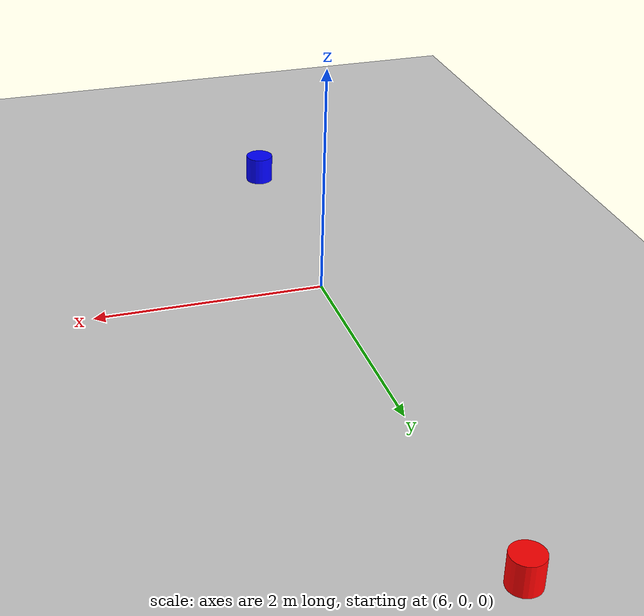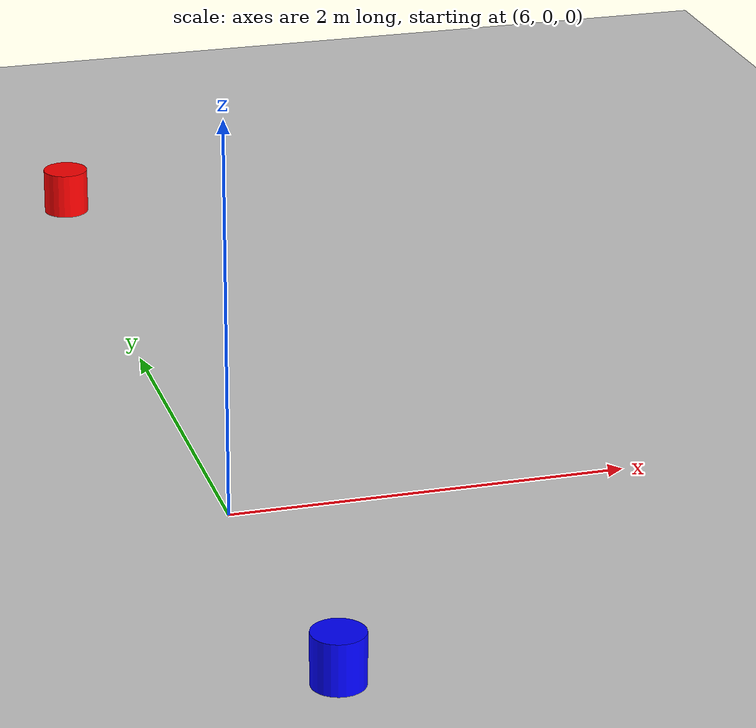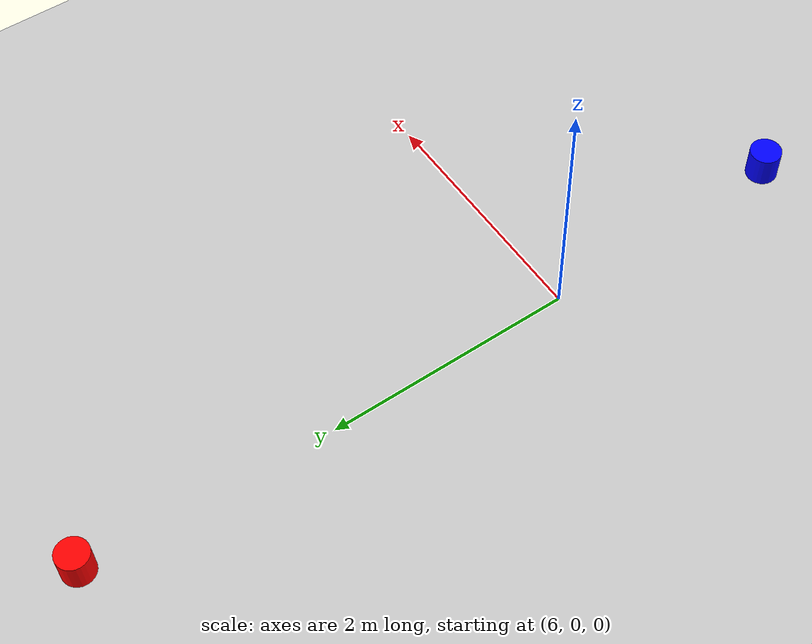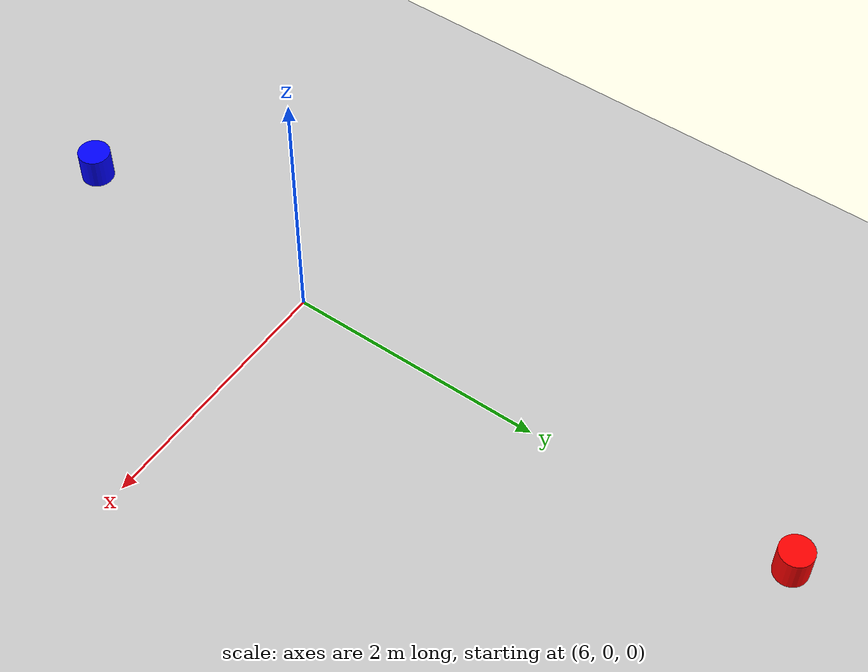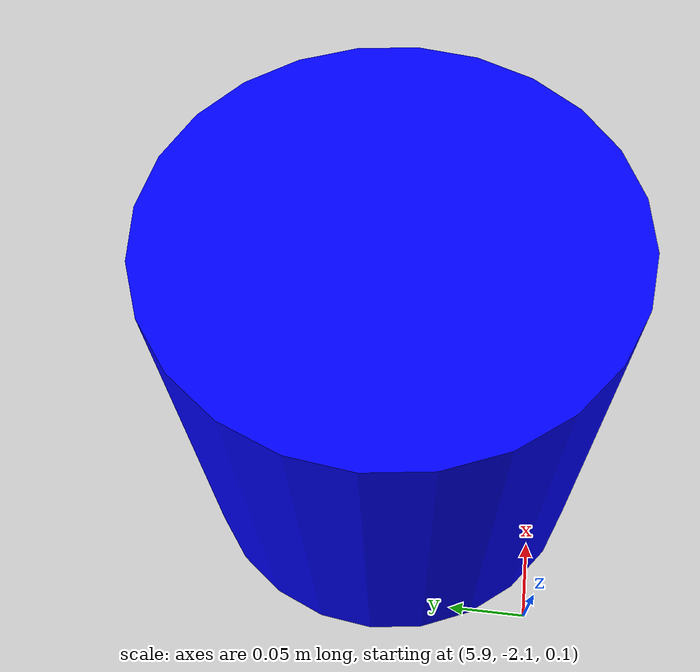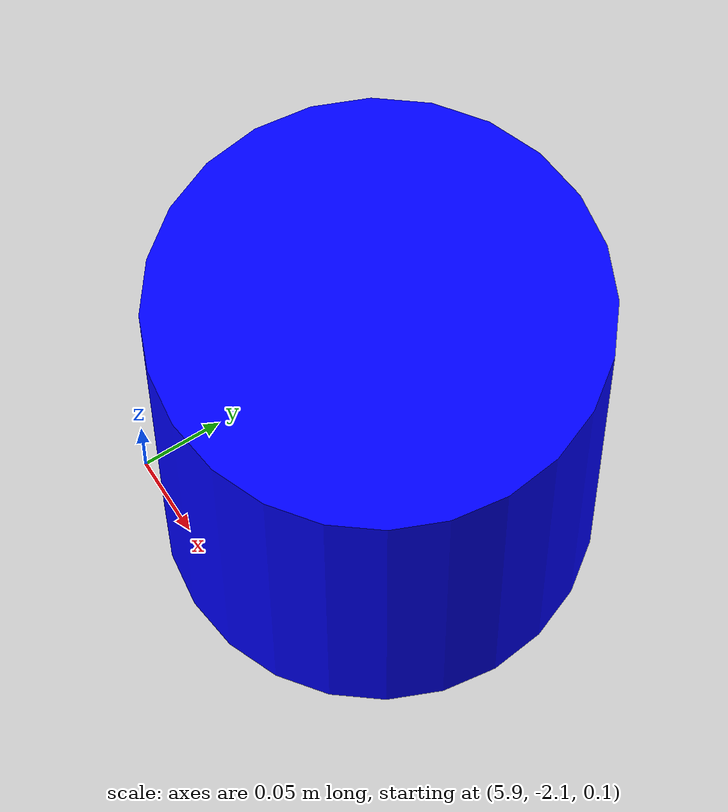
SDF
<?xml version="1.0" ?>
<sdf version="1.6">
  <world name="default">
    <plugin name="gazebo_ros_init" filename="libgazebo_ros_init.so"/>
    <plugin name="gazebo_ros_state" filename="libgazebo_ros_state.so"/>

    <include>
      <uri>model://sun</uri>
    </include>

    <!-- 默认灰色地面 -->
    <include>
      <uri>model://ground_plane</uri>
    </include>

    <!-- 红桶1: 右边 3m + 前向 5m，Gazebo (6.0, 4.0) → NED (3, 5) -->
    <model name="red_bucket_1">
      <pose>6.0 4.0 0.25 0 0 0</pose>
      <link name="bucket1_link">
        <inertial>
          <mass>0.5</mass>
          <inertia>
            <ixx>0.01</ixx><ixy>0</ixy><ixz>0</ixz>
            <iyy>0.01</iyy><iyz>0</iyz>
            <izz>0.01</izz>
          </inertia>
        </inertial>
        <collision name="bucket1_collision">
          <geometry>
            <cylinder><radius>0.125</radius><length>0.25</length></cylinder>
          </geometry>
        </collision>
        <visual name="bucket1_visual">
          <geometry>
            <cylinder><radius>0.125</radius><length>0.25</length></cylinder>
          </geometry>
          <material>
            <ambient>1 0 0 1</ambient>
            <diffuse>1 0 0 1</diffuse>
          </material>
        </visual>
      </link>
    </model>

    <!-- 蓝桶2: 左边 3m + 前向 5m，Gazebo (6.0, -2.0) → NED (-3, 5) -->
    <model name="blue_bucket_2">
      <pose>6.0 -2.0 0.25 0 0 0</pose>
      <link name="bucket2_link">
        <inertial>
          <mass>0.5</mass>
          <inertia>
            <ixx>0.01</ixx><ixy>0</ixy><ixz>0</ixz>
            <iyy>0.01</iyy><iyz>0</iyz>
            <izz>0.01</izz>
          </inertia>
        </inertial>
        <collision name="bucket2_collision">
          <geometry>
            <cylinder><radius>0.125</radius><length>0.25</length></cylinder>
          </geometry>
        </collision>
        <visual name="bucket2_visual">
          <geometry>
            <cylinder><radius>0.125</radius><length>0.25</length></cylinder>
          </geometry>
          <material>
            <ambient>0 0 1 1</ambient>
            <diffuse>0 0 1 1</diffuse>
          </material>
        </visual>
      </link>
    </model>

  </world>
</sdf>
